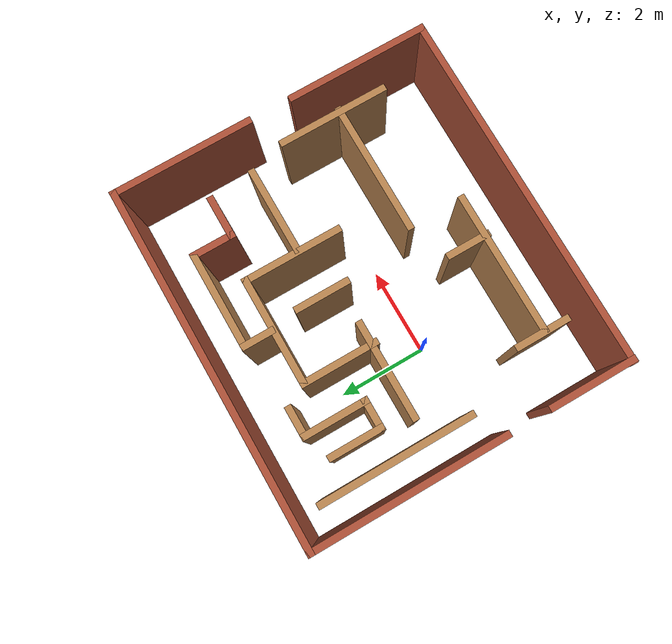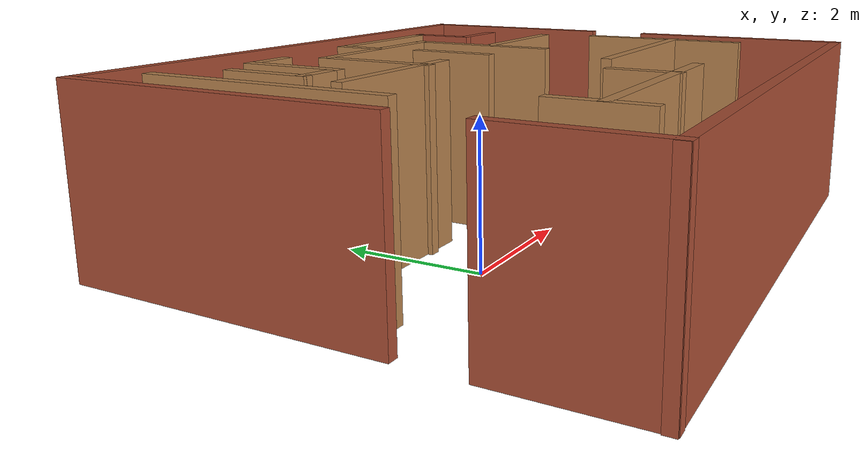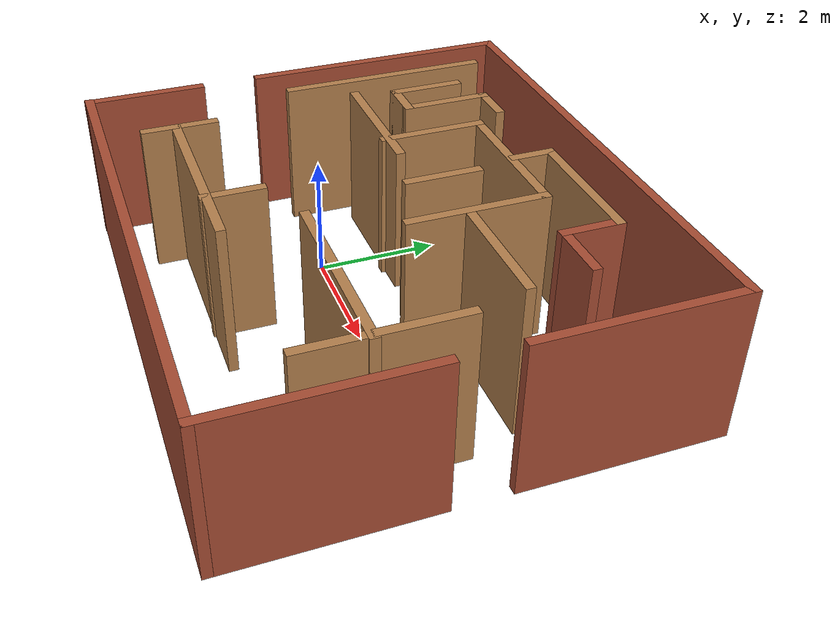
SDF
<?xml version='1.0'?>
<sdf version='1.7'>
  <model name='maze'>
    <pose>1.60896 0.412225 0 0 -0 0</pose>
    <link name='Wall_0'>
      <collision name='Wall_0_Collision'>
        <geometry>
          <box>
            <size>2 0.15 2.5</size>
          </box>
        </geometry>
        <pose>0 0 1.25 0 -0 0</pose>
      </collision>
      <visual name='Wall_0_Visual'>
        <pose>0 0 1.25 0 -0 0</pose>
        <geometry>
          <box>
            <size>2 0.15 2.5</size>
          </box>
        </geometry>
        <material>
          <script>
            <uri>file://media/materials/scripts/gazebo.material</uri>
            <name>Gazebo/Bricks</name>
          </script>
          <ambient>1 1 1 1</ambient>
        </material>
        <meta>
          <layer>0</layer>
        </meta>
      </visual>
      <pose>-4.03896 -2.69722 0 0 -0 -1.5708</pose>
    </link>
    <link name='Wall_10'>
      <collision name='Wall_10_Collision'>
        <geometry>
          <box>
            <size>3.25 0.15 2.5</size>
          </box>
        </geometry>
        <pose>0 0 1.25 0 -0 0</pose>
      </collision>
      <visual name='Wall_10_Visual'>
        <pose>0 0 1.25 0 -0 0</pose>
        <geometry>
          <box>
            <size>3.25 0.15 2.5</size>
          </box>
        </geometry>
        <material>
          <script>
            <uri>file://media/materials/scripts/gazebo.material</uri>
            <name>Gazebo/Bricks</name>
          </script>
          <ambient>1 1 1 1</ambient>
        </material>
        <meta>
          <layer>0</layer>
        </meta>
      </visual>
      <pose>4.04553 -2.06485 0 0 -0 -1.5708</pose>
    </link>
    <link name='Wall_11'>
      <collision name='Wall_11_Collision'>
        <geometry>
          <box>
            <size>8.25 0.15 2.5</size>
          </box>
        </geometry>
        <pose>0 0 1.25 0 -0 0</pose>
      </collision>
      <visual name='Wall_11_Visual'>
        <pose>0 0 1.25 0 -0 0</pose>
        <geometry>
          <box>
            <size>8.25 0.15 2.5</size>
          </box>
        </geometry>
        <material>
          <script>
            <uri>file://media/materials/scripts/gazebo.material</uri>
            <name>Gazebo/Bricks</name>
          </script>
          <ambient>1 1 1 1</ambient>
        </material>
        <meta>
          <layer>0</layer>
        </meta>
      </visual>
      <pose>-0.004473 -3.61485 0 0 -0 3.14159</pose>
    </link>
    <link name='Wall_13'>
      <collision name='Wall_13_Collision'>
        <geometry>
          <box>
            <size>3.5 0.15 2.5</size>
          </box>
        </geometry>
        <pose>0 0 1.25 0 -0 0</pose>
      </collision>
      <visual name='Wall_13_Visual'>
        <pose>0 0 1.25 0 -0 0</pose>
        <geometry>
          <box>
            <size>3.5 0.15 2.5</size>
          </box>
        </geometry>
        <material>
          <script>
            <uri>file://media/materials/scripts/gazebo.material</uri>
            <name>Gazebo/Wood</name>
          </script>
          <ambient>1 1 1 1</ambient>
        </material>
        <meta>
          <layer>0</layer>
        </meta>
      </visual>
      <pose>-3.37634 1.33858 0 0 -0 -1.5708</pose>
    </link>
    <link name='Wall_15'>
      <collision name='Wall_15_Collision'>
        <geometry>
          <box>
            <size>2.25 0.15 2.5</size>
          </box>
        </geometry>
        <pose>0 0 1.25 0 -0 0</pose>
      </collision>
      <visual name='Wall_15_Visual'>
        <pose>0 0 1.25 0 -0 0</pose>
        <geometry>
          <box>
            <size>2.25 0.15 2.5</size>
          </box>
        </geometry>
        <material>
          <script>
            <uri>file://media/materials/scripts/gazebo.material</uri>
            <name>Gazebo/Wood</name>
          </script>
          <ambient>1 1 1 1</ambient>
        </material>
        <meta>
          <layer>0</layer>
        </meta>
      </visual>
      <pose>-1.80924 0.641013 0 0 -0 0</pose>
    </link>
    <link name='Wall_17'>
      <collision name='Wall_17_Collision'>
        <geometry>
          <box>
            <size>1.75 0.15 2.5</size>
          </box>
        </geometry>
        <pose>0 0 1.25 0 -0 0</pose>
      </collision>
      <visual name='Wall_17_Visual'>
        <pose>0 0 1.25 0 -0 0</pose>
        <geometry>
          <box>
            <size>1.75 0.15 2.5</size>
          </box>
        </geometry>
        <material>
          <script>
            <uri>file://media/materials/scripts/gazebo.material</uri>
            <name>Gazebo/Wood</name>
          </script>
          <ambient>1 1 1 1</ambient>
        </material>
        <meta>
          <layer>0</layer>
        </meta>
      </visual>
      <pose>-1.2167 1.37352 0 0 -0 1.5708</pose>
    </link>
    <link name='Wall_18'>
      <collision name='Wall_18_Collision'>
        <geometry>
          <box>
            <size>2.5 0.15 2.5</size>
          </box>
        </geometry>
        <pose>0 0 1.25 0 -0 0</pose>
      </collision>
      <visual name='Wall_18_Visual'>
        <pose>0 0 1.25 0 -0 0</pose>
        <geometry>
          <box>
            <size>2.5 0.15 2.5</size>
          </box>
        </geometry>
        <material>
          <script>
            <uri>file://media/materials/scripts/gazebo.material</uri>
            <name>Gazebo/Wood</name>
          </script>
          <ambient>1 1 1 1</ambient>
        </material>
        <meta>
          <layer>0</layer>
        </meta>
      </visual>
      <pose>-0.0417 2.17352 0 0 -0 0</pose>
    </link>
    <link name='Wall_20'>
      <collision name='Wall_20_Collision'>
        <geometry>
          <box>
            <size>2.25 0.15 2.5</size>
          </box>
        </geometry>
        <pose>0 0 1.25 0 -0 0</pose>
      </collision>
      <visual name='Wall_20_Visual'>
        <pose>0 0 1.25 0 -0 0</pose>
        <geometry>
          <box>
            <size>2.25 0.15 2.5</size>
          </box>
        </geometry>
        <material>
          <script>
            <uri>file://media/materials/scripts/gazebo.material</uri>
            <name>Gazebo/Wood</name>
          </script>
          <ambient>1 1 1 1</ambient>
        </material>
        <meta>
          <layer>0</layer>
        </meta>
      </visual>
      <pose>1.1333 1.12352 0 0 -0 -1.5708</pose>
    </link>
    <link name='Wall_22'>
      <collision name='Wall_22_Collision'>
        <geometry>
          <box>
            <size>2 0.15 2.5</size>
          </box>
        </geometry>
        <pose>0 0 1.25 0 -0 0</pose>
      </collision>
      <visual name='Wall_22_Visual'>
        <pose>0 0 1.25 0 -0 0</pose>
        <geometry>
          <box>
            <size>2 0.15 2.5</size>
          </box>
        </geometry>
        <material>
          <script>
            <uri>file://media/materials/scripts/gazebo.material</uri>
            <name>Gazebo/Wood</name>
          </script>
          <ambient>1 1 1 1</ambient>
        </material>
        <meta>
          <layer>0</layer>
        </meta>
      </visual>
      <pose>2.11128 0.975605 0 0 -0 0</pose>
    </link>
    <link name='Wall_24'>
      <collision name='Wall_24_Collision'>
        <geometry>
          <box>
            <size>2.5 0.15 2.5</size>
          </box>
        </geometry>
        <pose>0 0 1.25 0 -0 0</pose>
      </collision>
      <visual name='Wall_24_Visual'>
        <pose>0 0 1.25 0 -0 0</pose>
        <geometry>
          <box>
            <size>2.5 0.15 2.5</size>
          </box>
        </geometry>
        <material>
          <script>
            <uri>file://media/materials/scripts/gazebo.material</uri>
            <name>Gazebo/Wood</name>
          </script>
          <ambient>1 1 1 1</ambient>
        </material>
        <meta>
          <layer>0</layer>
        </meta>
      </visual>
      <pose>3.28509 -1.05109 0 0 -0 -1.5708</pose>
    </link>
    <link name='Wall_26'>
      <collision name='Wall_26_Collision'>
        <geometry>
          <box>
            <size>3 0.15 2.5</size>
          </box>
        </geometry>
        <pose>0 0 1.25 0 -0 0</pose>
      </collision>
      <visual name='Wall_26_Visual'>
        <pose>0 0 1.25 0 -0 0</pose>
        <geometry>
          <box>
            <size>3 0.15 2.5</size>
          </box>
        </geometry>
        <material>
          <script>
            <uri>file://media/materials/scripts/gazebo.material</uri>
            <name>Gazebo/Wood</name>
          </script>
          <ambient>1 1 1 1</ambient>
        </material>
        <meta>
          <layer>0</layer>
        </meta>
      </visual>
      <pose>1.89051 -1.21446 0 0 -0 3.14159</pose>
    </link>
    <link name='Wall_28'>
      <collision name='Wall_28_Collision'>
        <geometry>
          <box>
            <size>1.25 0.15 2.5</size>
          </box>
        </geometry>
        <pose>0 0 1.25 0 -0 0</pose>
      </collision>
      <visual name='Wall_28_Visual'>
        <pose>0 0 1.25 0 -0 0</pose>
        <geometry>
          <box>
            <size>1.25 0.15 2.5</size>
          </box>
        </geometry>
        <material>
          <script>
            <uri>file://media/materials/scripts/gazebo.material</uri>
            <name>Gazebo/Wood</name>
          </script>
          <ambient>1 1 1 1</ambient>
        </material>
        <meta>
          <layer>0</layer>
        </meta>
      </visual>
      <pose>-2.70716 -2.37281 0 0 -0 -1.5708</pose>
    </link>
    <link name='Wall_30'>
      <collision name='Wall_30_Collision'>
        <geometry>
          <box>
            <size>3.25 0.15 2.5</size>
          </box>
        </geometry>
        <pose>0 0 1.25 0 -0 0</pose>
      </collision>
      <visual name='Wall_30_Visual'>
        <pose>0 0 1.25 0 -0 0</pose>
        <geometry>
          <box>
            <size>3.25 0.15 2.5</size>
          </box>
        </geometry>
        <material>
          <script>
            <uri>file://media/materials/scripts/gazebo.material</uri>
            <name>Gazebo/Wood</name>
          </script>
          <ambient>1 1 1 1</ambient>
        </material>
        <meta>
          <layer>0</layer>
        </meta>
      </visual>
      <pose>-1.12674 -2.43115 0 0 -0 0</pose>
    </link>
    <link name='Wall_32'>
      <collision name='Wall_32_Collision'>
        <geometry>
          <box>
            <size>0.75 0.15 2.5</size>
          </box>
        </geometry>
        <pose>0 0 1.25 0 -0 0</pose>
      </collision>
      <visual name='Wall_32_Visual'>
        <pose>0 0 1.25 0 -0 0</pose>
        <geometry>
          <box>
            <size>0.75 0.15 2.5</size>
          </box>
        </geometry>
        <material>
          <script>
            <uri>file://media/materials/scripts/gazebo.material</uri>
            <name>Gazebo/Wood</name>
          </script>
          <ambient>1 1 1 1</ambient>
        </material>
        <meta>
          <layer>0</layer>
        </meta>
      </visual>
      <pose>-0 2.52272 0 0 -0 1.5708</pose>
    </link>
    <link name='Wall_33'>
      <collision name='Wall_33_Collision'>
        <geometry>
          <box>
            <size>2.25 0.15 2.5</size>
          </box>
        </geometry>
        <pose>0 0 1.25 0 -0 0</pose>
      </collision>
      <visual name='Wall_33_Visual'>
        <pose>0 0 1.25 0 -0 0</pose>
        <geometry>
          <box>
            <size>2.25 0.15 2.5</size>
          </box>
        </geometry>
        <material>
          <script>
            <uri>file://media/materials/scripts/gazebo.material</uri>
            <name>Gazebo/Wood</name>
          </script>
          <ambient>1 1 1 1</ambient>
        </material>
        <meta>
          <layer>0</layer>
        </meta>
      </visual>
      <pose>1.05 2.82272 0 0 -0 0</pose>
    </link>
    <link name='Wall_34'>
      <collision name='Wall_34_Collision'>
        <geometry>
          <box>
            <size>1 0.15 2.5</size>
          </box>
        </geometry>
        <pose>0 0 1.25 0 -0 0</pose>
      </collision>
      <visual name='Wall_34_Visual'>
        <pose>0 0 1.25 0 -0 0</pose>
        <geometry>
          <box>
            <size>1 0.15 2.5</size>
          </box>
        </geometry>
        <material>
          <script>
            <uri>file://media/materials/scripts/gazebo.material</uri>
            <name>Gazebo/Bricks</name>
          </script>
          <ambient>1 1 1 1</ambient>
        </material>
        <meta>
          <layer>0</layer>
        </meta>
      </visual>
      <pose>2.1 2.39772 0 0 -0 -1.5708</pose>
    </link>
    <link name='Wall_35'>
      <collision name='Wall_35_Collision'>
        <geometry>
          <box>
            <size>1 0.15 2.5</size>
          </box>
        </geometry>
        <pose>0 0 1.25 0 -0 0</pose>
      </collision>
      <visual name='Wall_35_Visual'>
        <pose>0 0 1.25 0 -0 0</pose>
        <geometry>
          <box>
            <size>1 0.15 2.5</size>
          </box>
        </geometry>
        <material>
          <script>
            <uri>file://media/materials/scripts/gazebo.material</uri>
            <name>Gazebo/Bricks</name>
          </script>
          <ambient>1 1 1 1</ambient>
        </material>
        <meta>
          <layer>0</layer>
        </meta>
      </visual>
      <pose>2.525 1.97272 0 0 -0 0</pose>
    </link>
    <link name='Wall_37'>
      <collision name='Wall_37_Collision'>
        <geometry>
          <box>
            <size>1 0.15 2.5</size>
          </box>
        </geometry>
        <pose>0 0 1.25 0 -0 0</pose>
      </collision>
      <visual name='Wall_37_Visual'>
        <pose>0 0 1.25 0 -0 0</pose>
        <geometry>
          <box>
            <size>1 0.15 2.5</size>
          </box>
        </geometry>
        <material>
          <script>
            <uri>file://media/materials/scripts/gazebo.material</uri>
            <name>Gazebo/Wood</name>
          </script>
          <ambient>1 1 1 1</ambient>
        </material>
        <meta>
          <layer>0</layer>
        </meta>
      </visual>
      <pose>-0.456263 -2.03657 0 0 -0 1.5708</pose>
    </link>
    <link name='Wall_39'>
      <collision name='Wall_39_Collision'>
        <geometry>
          <box>
            <size>1.25 0.15 2.5</size>
          </box>
        </geometry>
        <pose>0 0 1.25 0 -0 0</pose>
      </collision>
      <visual name='Wall_39_Visual'>
        <pose>0 0 1.25 0 -0 0</pose>
        <geometry>
          <box>
            <size>1.25 0.15 2.5</size>
          </box>
        </geometry>
        <material>
          <script>
            <uri>file://media/materials/scripts/gazebo.material</uri>
            <name>Gazebo/Wood</name>
          </script>
          <ambient>1 1 1 1</ambient>
        </material>
        <meta>
          <layer>0</layer>
        </meta>
      </visual>
      <pose>-2.70716 1.85523 0 0 -0 -1.5708</pose>
    </link>
    <link name='Wall_40'>
      <collision name='Wall_40_Collision'>
        <geometry>
          <box>
            <size>0.75 0.15 2.5</size>
          </box>
        </geometry>
        <pose>0 0 1.25 0 -0 0</pose>
      </collision>
      <visual name='Wall_40_Visual'>
        <pose>0 0 1.25 0 -0 0</pose>
        <geometry>
          <box>
            <size>0.75 0.15 2.5</size>
          </box>
        </geometry>
        <material>
          <script>
            <uri>file://media/materials/scripts/gazebo.material</uri>
            <name>Gazebo/Wood</name>
          </script>
          <ambient>1 1 1 1</ambient>
        </material>
        <meta>
          <layer>0</layer>
        </meta>
      </visual>
      <pose>-2.40716 1.30523 0 0 -0 0</pose>
    </link>
    <link name='Wall_41'>
      <collision name='Wall_41_Collision'>
        <geometry>
          <box>
            <size>1.5 0.15 2.5</size>
          </box>
        </geometry>
        <pose>0 0 1.25 0 -0 0</pose>
      </collision>
      <visual name='Wall_41_Visual'>
        <pose>0 0 1.25 0 -0 0</pose>
        <geometry>
          <box>
            <size>1.5 0.15 2.5</size>
          </box>
        </geometry>
        <material>
          <script>
            <uri>file://media/materials/scripts/gazebo.material</uri>
            <name>Gazebo/Wood</name>
          </script>
          <ambient>1 1 1 1</ambient>
        </material>
        <meta>
          <layer>0</layer>
        </meta>
      </visual>
      <pose>-2.10716 1.98023 0 0 -0 1.5708</pose>
    </link>
    <link name='Wall_42'>
      <collision name='Wall_42_Collision'>
        <geometry>
          <box>
            <size>0.75 0.15 2.5</size>
          </box>
        </geometry>
        <pose>0 0 1.25 0 -0 0</pose>
      </collision>
      <visual name='Wall_42_Visual'>
        <pose>0 0 1.25 0 -0 0</pose>
        <geometry>
          <box>
            <size>0.75 0.15 2.5</size>
          </box>
        </geometry>
        <material>
          <script>
            <uri>file://media/materials/scripts/gazebo.material</uri>
            <name>Gazebo/Wood</name>
          </script>
          <ambient>1 1 1 1</ambient>
        </material>
        <meta>
          <layer>0</layer>
        </meta>
      </visual>
      <pose>-1.80716 2.65523 0 0 -0 0</pose>
    </link>
    <link name='Wall_44'>
      <collision name='Wall_44_Collision'>
        <geometry>
          <box>
            <size>1.25 0.15 2.5</size>
          </box>
        </geometry>
        <pose>0 0 1.25 0 -0 0</pose>
      </collision>
      <visual name='Wall_44_Visual'>
        <pose>0 0 1.25 0 -0 0</pose>
        <geometry>
          <box>
            <size>1.25 0.15 2.5</size>
          </box>
        </geometry>
        <material>
          <script>
            <uri>file://media/materials/scripts/gazebo.material</uri>
            <name>Gazebo/Wood</name>
          </script>
          <ambient>1 1 1 1</ambient>
        </material>
        <meta>
          <layer>0</layer>
        </meta>
      </visual>
      <pose>0.12167 1.00354 0 0 -0 -1.5708</pose>
    </link>
    <link name='Wall_6'>
      <collision name='Wall_6_Collision'>
        <geometry>
          <box>
            <size>4.5 0.15 2.5</size>
          </box>
        </geometry>
        <pose>0 0 1.25 0 -0 0</pose>
      </collision>
      <visual name='Wall_6_Visual'>
        <pose>0 0 1.25 0 -0 0</pose>
        <geometry>
          <box>
            <size>4.5 0.15 2.5</size>
          </box>
        </geometry>
        <material>
          <script>
            <uri>file://media/materials/scripts/gazebo.material</uri>
            <name>Gazebo/Bricks</name>
          </script>
          <ambient>1 1 1 1</ambient>
        </material>
        <meta>
          <layer>0</layer>
        </meta>
      </visual>
      <pose>-4.04553 1.44722 0 0 -0 1.5708</pose>
    </link>
    <link name='Wall_7'>
      <collision name='Wall_7_Collision'>
        <geometry>
          <box>
            <size>8.25 0.15 2.5</size>
          </box>
        </geometry>
        <pose>0 0 1.25 0 -0 0</pose>
      </collision>
      <visual name='Wall_7_Visual'>
        <pose>0 0 1.25 0 -0 0</pose>
        <geometry>
          <box>
            <size>8.25 0.15 2.5</size>
          </box>
        </geometry>
        <material>
          <script>
            <uri>file://media/materials/scripts/gazebo.material</uri>
            <name>Gazebo/Bricks</name>
          </script>
          <ambient>1 1 1 1</ambient>
        </material>
        <meta>
          <layer>0</layer>
        </meta>
      </visual>
      <pose>0.004472 3.62222 0 0 -0 0</pose>
    </link>
    <link name='Wall_8'>
      <collision name='Wall_8_Collision'>
        <geometry>
          <box>
            <size>3.25 0.15 2.5</size>
          </box>
        </geometry>
        <pose>0 0 1.25 0 -0 0</pose>
      </collision>
      <visual name='Wall_8_Visual'>
        <pose>0 0 1.25 0 -0 0</pose>
        <geometry>
          <box>
            <size>3.25 0.15 2.5</size>
          </box>
        </geometry>
        <material>
          <script>
            <uri>file://media/materials/scripts/gazebo.material</uri>
            <name>Gazebo/Bricks</name>
          </script>
          <ambient>1 1 1 1</ambient>
        </material>
        <meta>
          <layer>0</layer>
        </meta>
      </visual>
      <pose>4.05447 2.07222 0 0 -0 -1.5708</pose>
    </link>
    <static>1</static>
  </model>
</sdf>
